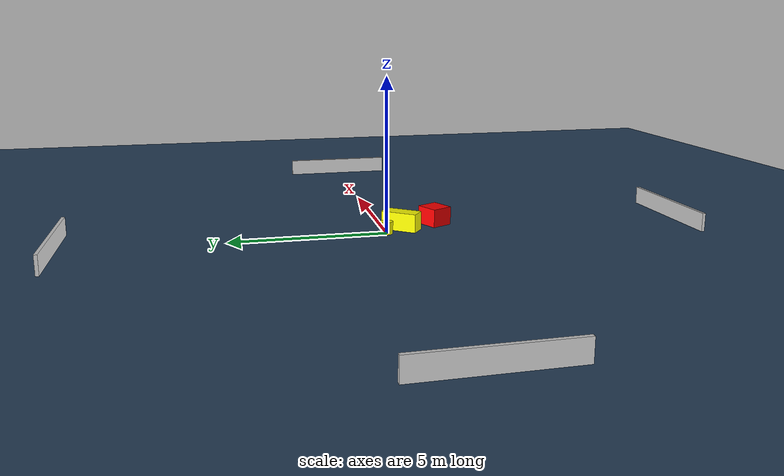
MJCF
<?xml version="1.0" ?>
<mujoco model="generated_environment">
  <option timestep="0.01" integrator="RK4" cone="elliptic"/>
  <default>
    <geom density="1"/>
  </default>
  <asset>
    <texture builtin="gradient" height="3072" name="skybox" rgb1="0.3 0.5 0.7" rgb2="0 0 0" type="skybox" width="512"/>
    <texture builtin="checker" height="300" name="groundplane" rgb1="0.2 0.3 0.4" rgb2="0.1 0.2 0.3" type="2d" width="300"/>
    <material name="groundplane" reflectance="0.2" texrepeat="5 5" texture="groundplane"/>
  </asset>
  <worldbody>
    <light dir="0 0 -1" directional="true" pos="0 0 1.5"/>
    <geom condim="3" friction="0.5 0.005 0.001" material="groundplane" name="floor" pos="0 0 0" size="0 0 0.05" type="plane"/>
    <body name="walls">
      <geom name="wall_1" condim="4" pos="-10.0 0.0 0.3" rgba="0.800000011920929 0.800000011920929 0.800000011920929 1.0" size="0.05 2.0 0.3" type="box"/>
      <geom name="wall_2" condim="4" pos="10.0 0.0 0.3" rgba="0.800000011920929 0.800000011920929 0.800000011920929 1.0" size="0.05 2.0 0.3" type="box"/>
      <geom name="wall_3" condim="4" pos="0.0 -10.0 0.3" rgba="0.800000011920929 0.800000011920929 0.800000011920929 1.0" size="2.0 0.05 0.3" type="box"/>
      <geom name="wall_4" condim="4" pos="0.0 10.0 0.3" rgba="0.800000011920929 0.800000011920929 0.800000011920929 1.0" size="2.0 0.05 0.3" type="box"/>
    </body>
    <body name="robot">
      <joint name="joint_x" type="slide" pos="0 0 0" axis="1 0 0"/>
      <joint name="joint_y" type="slide" pos="0 0 0" axis="0 1 0"/>
      <geom name="robot" type="cylinder" pos="0.0 0.0 0.2" size="0.2 0.2 0.0" mass="5.0" friction="1.0 0.005 0.0001" condim="4" rgba="1.0 1.0 0.0 1.0"/>
    </body>
    <body name="obstacle_1_movable">
      <geom name="obstacle_1_movable" condim="4" pos="0.3957106663928538 -0.5777293334913334 0.3" euler="0 0 232.94276123069878" friction="0.0 0.005 0.001" rgba="1.0 1.0 0.0 1.0" size="0.595276032556177 0.25754867566349343 0.3" type="box" mass="0.1"/>
      <joint type="free"/>
    </body>
    <body name="obstacle_2_static">
      <geom name="obstacle_2_static" condim="4" pos="0.8073531889215017 -1.8197187606808811 0.3" euler="0 0 205.82346534870734" friction="0.0 0.005 0.001" rgba="1.0 0.0 0.0 1.0" size="0.38737164394590484 0.36344968018036694 0.3" type="box"/>
    </body>
  </worldbody>
  <actuator>
    <motor name="actuator_x" joint="joint_x" gear="1" ctrlrange="-1 1"/>
    <motor name="actuator_y" joint="joint_y" gear="1" ctrlrange="-1 1"/>
  </actuator>
</mujoco>
